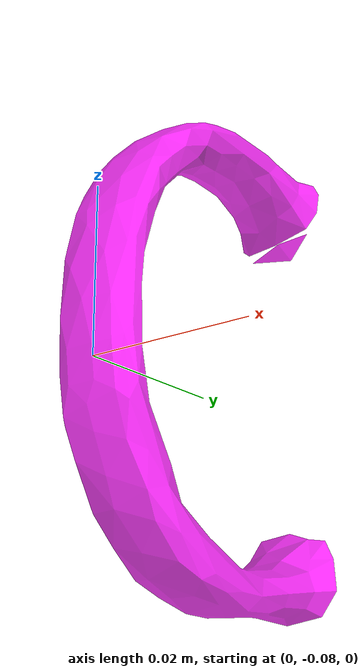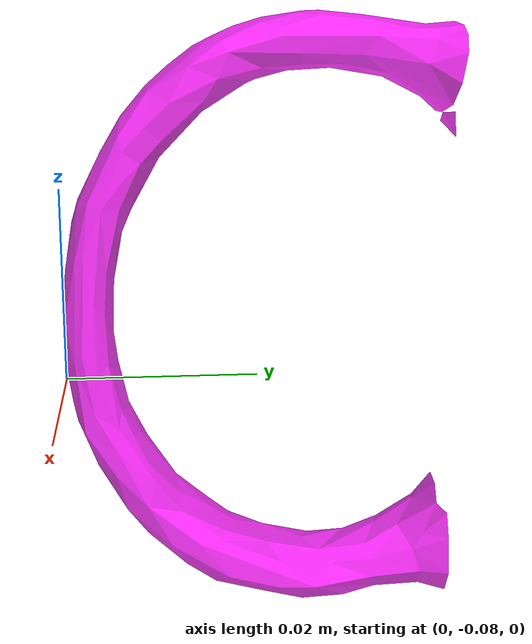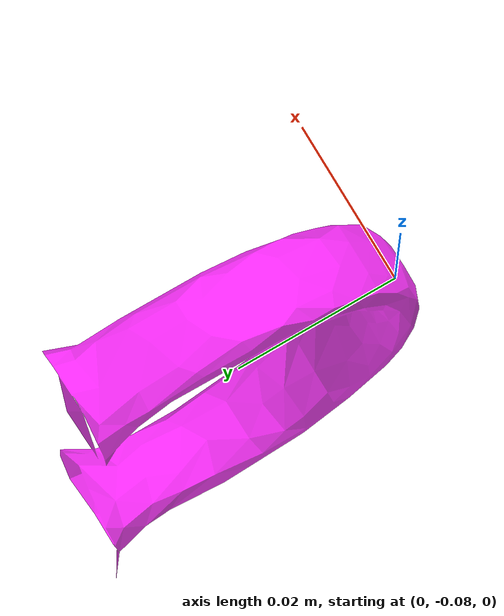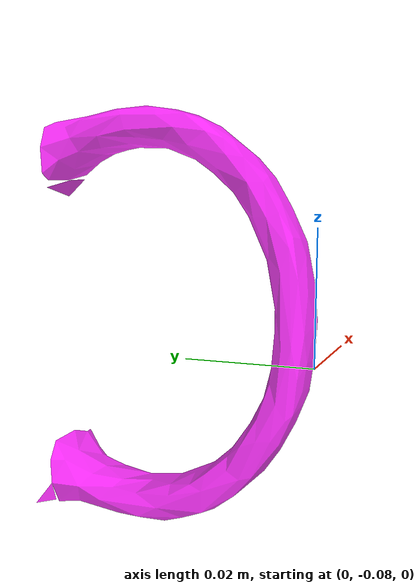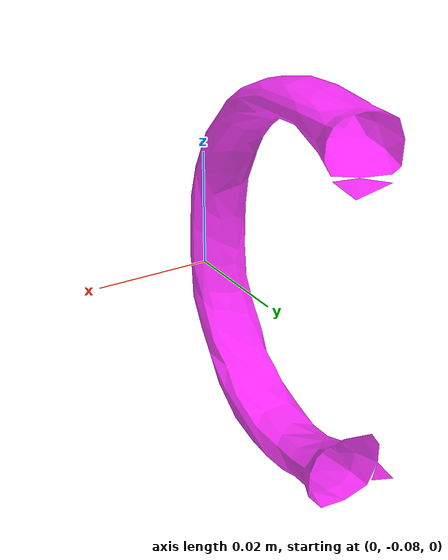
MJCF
<mujoco model="bottom_watertight_tiny">
  <default>
    <default group="2" type="mesh" contype="0" conaffinity="0">
      <geom group="2" type="mesh" contype="0" conaffinity="0"/>
    </default>
    <default group="3" type="mesh">
      <geom group="3" type="mesh"/>
    </default>
  </default>
  <asset>
    <mesh file="bottom_watertight_tiny.obj"/>
    <mesh file="bottom_watertight_tiny_collision_0.obj"/>
    <mesh file="bottom_watertight_tiny_collision_1.obj"/>
    <mesh file="bottom_watertight_tiny_collision_2.obj"/>
    <mesh file="bottom_watertight_tiny_collision_3.obj"/>
    <mesh file="bottom_watertight_tiny_collision_4.obj"/>
    <mesh file="bottom_watertight_tiny_collision_5.obj"/>
    <mesh file="bottom_watertight_tiny_collision_6.obj"/>
    <mesh file="bottom_watertight_tiny_collision_7.obj"/>
    <mesh file="bottom_watertight_tiny_collision_8.obj"/>
    <mesh file="bottom_watertight_tiny_collision_9.obj"/>
    <mesh file="bottom_watertight_tiny_collision_10.obj"/>
    <mesh file="bottom_watertight_tiny_collision_11.obj"/>
    <mesh file="bottom_watertight_tiny_collision_12.obj"/>
    <mesh file="bottom_watertight_tiny_collision_13.obj"/>
    <mesh file="bottom_watertight_tiny_collision_14.obj"/>
    <mesh file="bottom_watertight_tiny_collision_15.obj"/>
    <mesh file="bottom_watertight_tiny_collision_16.obj"/>
    <mesh file="bottom_watertight_tiny_collision_17.obj"/>
    <mesh file="bottom_watertight_tiny_collision_18.obj"/>
    <mesh file="bottom_watertight_tiny_collision_19.obj"/>
    <mesh file="bottom_watertight_tiny_collision_20.obj"/>
    <mesh file="bottom_watertight_tiny_collision_21.obj"/>
    <mesh file="bottom_watertight_tiny_collision_22.obj"/>
    <mesh file="bottom_watertight_tiny_collision_23.obj"/>
    <mesh file="bottom_watertight_tiny_collision_24.obj"/>
    <mesh file="bottom_watertight_tiny_collision_25.obj"/>
    <mesh file="bottom_watertight_tiny_collision_26.obj"/>
    <mesh file="bottom_watertight_tiny_collision_27.obj"/>
    <mesh file="bottom_watertight_tiny_collision_28.obj"/>
    <mesh file="bottom_watertight_tiny_collision_29.obj"/>
    <mesh file="bottom_watertight_tiny_collision_30.obj"/>
    <mesh file="bottom_watertight_tiny_collision_31.obj"/>
    <mesh file="bottom_watertight_tiny_collision_32.obj"/>
    <mesh file="bottom_watertight_tiny_collision_33.obj"/>
    <mesh file="bottom_watertight_tiny_collision_34.obj"/>
    <mesh file="bottom_watertight_tiny_collision_35.obj"/>
    <mesh file="bottom_watertight_tiny_collision_36.obj"/>
    <mesh file="bottom_watertight_tiny_collision_37.obj"/>
    <mesh file="bottom_watertight_tiny_collision_38.obj"/>
    <mesh file="bottom_watertight_tiny_collision_39.obj"/>
    <mesh file="bottom_watertight_tiny_collision_40.obj"/>
    <mesh file="bottom_watertight_tiny_collision_41.obj"/>
    <mesh file="bottom_watertight_tiny_collision_42.obj"/>
    <mesh file="bottom_watertight_tiny_collision_43.obj"/>
    <mesh file="bottom_watertight_tiny_collision_44.obj"/>
    <mesh file="bottom_watertight_tiny_collision_45.obj"/>
    <mesh file="bottom_watertight_tiny_collision_46.obj"/>
    <mesh file="bottom_watertight_tiny_collision_47.obj"/>
    <mesh file="bottom_watertight_tiny_collision_48.obj"/>
    <mesh file="bottom_watertight_tiny_collision_49.obj"/>
    <mesh file="bottom_watertight_tiny_collision_50.obj"/>
    <mesh file="bottom_watertight_tiny_collision_51.obj"/>
    <mesh file="bottom_watertight_tiny_collision_52.obj"/>
    <mesh file="bottom_watertight_tiny_collision_53.obj"/>
    <mesh file="bottom_watertight_tiny_collision_54.obj"/>
    <mesh file="bottom_watertight_tiny_collision_55.obj"/>
    <mesh file="bottom_watertight_tiny_collision_56.obj"/>
    <mesh file="bottom_watertight_tiny_collision_57.obj"/>
    <mesh file="bottom_watertight_tiny_collision_58.obj"/>
    <mesh file="bottom_watertight_tiny_collision_59.obj"/>
    <mesh file="bottom_watertight_tiny_collision_60.obj"/>
    <mesh file="bottom_watertight_tiny_collision_61.obj"/>
    <mesh file="bottom_watertight_tiny_collision_62.obj"/>
    <mesh file="bottom_watertight_tiny_collision_63.obj"/>
    <mesh file="bottom_watertight_tiny_collision_64.obj"/>
    <mesh file="bottom_watertight_tiny_collision_65.obj"/>
    <mesh file="bottom_watertight_tiny_collision_66.obj"/>
    <mesh file="bottom_watertight_tiny_collision_67.obj"/>
    <mesh file="bottom_watertight_tiny_collision_68.obj"/>
    <mesh file="bottom_watertight_tiny_collision_69.obj"/>
    <mesh file="bottom_watertight_tiny_collision_70.obj"/>
    <mesh file="bottom_watertight_tiny_collision_71.obj"/>
    <mesh file="bottom_watertight_tiny_collision_72.obj"/>
    <mesh file="bottom_watertight_tiny_collision_73.obj"/>
    <mesh file="bottom_watertight_tiny_collision_74.obj"/>
    <mesh file="bottom_watertight_tiny_collision_75.obj"/>
    <mesh file="bottom_watertight_tiny_collision_76.obj"/>
    <mesh file="bottom_watertight_tiny_collision_77.obj"/>
    <mesh file="bottom_watertight_tiny_collision_78.obj"/>
    <mesh file="bottom_watertight_tiny_collision_79.obj"/>
    <mesh file="bottom_watertight_tiny_collision_80.obj"/>
    <mesh file="bottom_watertight_tiny_collision_81.obj"/>
    <mesh file="bottom_watertight_tiny_collision_82.obj"/>
    <mesh file="bottom_watertight_tiny_collision_83.obj"/>
    <mesh file="bottom_watertight_tiny_collision_84.obj"/>
    <mesh file="bottom_watertight_tiny_collision_85.obj"/>
    <mesh file="bottom_watertight_tiny_collision_86.obj"/>
    <mesh file="bottom_watertight_tiny_collision_87.obj"/>
    <mesh file="bottom_watertight_tiny_collision_88.obj"/>
    <mesh file="bottom_watertight_tiny_collision_89.obj"/>
    <mesh file="bottom_watertight_tiny_collision_90.obj"/>
    <mesh file="bottom_watertight_tiny_collision_91.obj"/>
    <mesh file="bottom_watertight_tiny_collision_92.obj"/>
    <mesh file="bottom_watertight_tiny_collision_93.obj"/>
    <mesh file="bottom_watertight_tiny_collision_94.obj"/>
    <mesh file="bottom_watertight_tiny_collision_95.obj"/>
    <mesh file="bottom_watertight_tiny_collision_96.obj"/>
    <mesh file="bottom_watertight_tiny_collision_97.obj"/>
    <mesh file="bottom_watertight_tiny_collision_98.obj"/>
    <mesh file="bottom_watertight_tiny_collision_99.obj"/>
  </asset>
  <worldbody>
    <body name="bottom_watertight_tiny">
      <freejoint/>
      <geom mesh="bottom_watertight_tiny" group="2" type="mesh" rgba="1 0 1 0.8" contype="0" conaffinity="0"/>
      <geom mesh="bottom_watertight_tiny_collision_0" rgba="0.3786981795748757 0.7370060106835793 0.4919669402731893 1" group="3" type="mesh"/>
      <geom mesh="bottom_watertight_tiny_collision_1" rgba="0.10709536596336422 0.5605533575480788 0.09157359173258395 1" group="3" type="mesh"/>
      <geom mesh="bottom_watertight_tiny_collision_2" rgba="0.6388855168211772 0.8800686669144392 0.5675295302178822 1" group="3" type="mesh"/>
      <geom mesh="bottom_watertight_tiny_collision_3" rgba="0.12228949853890059 0.046934438345457186 0.13272997940803044 1" group="3" type="mesh"/>
      <geom mesh="bottom_watertight_tiny_collision_4" rgba="0.17859933788199467 0.42432647570925164 0.7907115445421177 1" group="3" type="mesh"/>
      <geom mesh="bottom_watertight_tiny_collision_5" rgba="0.9660284497067798 0.010753524014857851 0.6136223218275945 1" group="3" type="mesh"/>
      <geom mesh="bottom_watertight_tiny_collision_6" rgba="0.7718736908581824 0.6039839429650272 0.9400681856715735 1" group="3" type="mesh"/>
      <geom mesh="bottom_watertight_tiny_collision_7" rgba="0.8844265113397545 0.9310324611034508 0.08951071531595445 1" group="3" type="mesh"/>
      <geom mesh="bottom_watertight_tiny_collision_8" rgba="0.07786005638546412 0.08703555264616547 0.5295179023505122 1" group="3" type="mesh"/>
      <geom mesh="bottom_watertight_tiny_collision_9" rgba="0.25290967543013865 0.3099826914456696 0.9935016662909865 1" group="3" type="mesh"/>
      <geom mesh="bottom_watertight_tiny_collision_10" rgba="0.3017261271476237 0.6068150487499143 0.7415696845696936 1" group="3" type="mesh"/>
      <geom mesh="bottom_watertight_tiny_collision_11" rgba="0.6820688209709681 0.6598549642699781 0.22603701457204628 1" group="3" type="mesh"/>
      <geom mesh="bottom_watertight_tiny_collision_12" rgba="0.8257222494684866 0.10089989156584289 0.740484551325407 1" group="3" type="mesh"/>
      <geom mesh="bottom_watertight_tiny_collision_13" rgba="0.5610088418002962 0.677284577233111 0.1636441047200865 1" group="3" type="mesh"/>
      <geom mesh="bottom_watertight_tiny_collision_14" rgba="0.7617209866274626 0.33145529933314677 0.3629503700665917 1" group="3" type="mesh"/>
      <geom mesh="bottom_watertight_tiny_collision_15" rgba="0.5563555659558371 0.42493147597626446 0.8537063036364783 1" group="3" type="mesh"/>
      <geom mesh="bottom_watertight_tiny_collision_16" rgba="0.4175180724505452 0.003425288644566371 0.39027242655681327 1" group="3" type="mesh"/>
      <geom mesh="bottom_watertight_tiny_collision_17" rgba="0.4416593112867414 0.051183988621584686 0.9345799602668197 1" group="3" type="mesh"/>
      <geom mesh="bottom_watertight_tiny_collision_18" rgba="0.5939508239747685 0.9328634553145003 0.4561355447805674 1" group="3" type="mesh"/>
      <geom mesh="bottom_watertight_tiny_collision_19" rgba="0.8953245005655954 0.6375670873115404 0.0034958047583611984 1" group="3" type="mesh"/>
      <geom mesh="bottom_watertight_tiny_collision_20" rgba="0.8596510696640697 0.537509047927685 0.2721389632290865 1" group="3" type="mesh"/>
      <geom mesh="bottom_watertight_tiny_collision_21" rgba="0.9899286404894209 0.39272119694989216 0.6774862985543341 1" group="3" type="mesh"/>
      <geom mesh="bottom_watertight_tiny_collision_22" rgba="0.3386849136761235 0.4174579985697294 0.2532324567510703 1" group="3" type="mesh"/>
      <geom mesh="bottom_watertight_tiny_collision_23" rgba="0.5536289434928345 0.803186543991644 0.0742732015770109 1" group="3" type="mesh"/>
      <geom mesh="bottom_watertight_tiny_collision_24" rgba="0.2061129437282072 0.6572396446127593 0.3493140956384332 1" group="3" type="mesh"/>
      <geom mesh="bottom_watertight_tiny_collision_25" rgba="0.7246701762201512 0.5758348244510191 0.6910054853383423 1" group="3" type="mesh"/>
      <geom mesh="bottom_watertight_tiny_collision_26" rgba="0.3576314380988084 0.6962136933972997 0.7486227778371768 1" group="3" type="mesh"/>
      <geom mesh="bottom_watertight_tiny_collision_27" rgba="0.5872152054189967 0.6627103497996545 0.6356112235311038 1" group="3" type="mesh"/>
      <geom mesh="bottom_watertight_tiny_collision_28" rgba="0.24681347627825578 0.3329901733482502 0.8751669759755365 1" group="3" type="mesh"/>
      <geom mesh="bottom_watertight_tiny_collision_29" rgba="0.6397679688587372 0.13411786097105804 0.35641149494712254 1" group="3" type="mesh"/>
      <geom mesh="bottom_watertight_tiny_collision_30" rgba="0.24292089756867818 0.7453831962828905 0.20293107686767764 1" group="3" type="mesh"/>
      <geom mesh="bottom_watertight_tiny_collision_31" rgba="0.11536432019196785 0.8883301500786771 0.05488617058955747 1" group="3" type="mesh"/>
      <geom mesh="bottom_watertight_tiny_collision_32" rgba="0.02362906882366922 0.6005885724869433 0.9147474885070354 1" group="3" type="mesh"/>
      <geom mesh="bottom_watertight_tiny_collision_33" rgba="0.582683374575383 0.07471102933750906 0.4820085423391829 1" group="3" type="mesh"/>
      <geom mesh="bottom_watertight_tiny_collision_34" rgba="0.7109210303172745 0.33605489297285684 0.8333968183189175 1" group="3" type="mesh"/>
      <geom mesh="bottom_watertight_tiny_collision_35" rgba="0.8255797366951323 0.26794184614675065 0.7654855200458843 1" group="3" type="mesh"/>
      <geom mesh="bottom_watertight_tiny_collision_36" rgba="0.685045744028465 0.7737239002275579 0.40783582018208775 1" group="3" type="mesh"/>
      <geom mesh="bottom_watertight_tiny_collision_37" rgba="0.5133858740816962 0.3336885937689922 0.03418695584649445 1" group="3" type="mesh"/>
      <geom mesh="bottom_watertight_tiny_collision_38" rgba="0.7755359294819977 0.9483915318427595 0.2908148718376977 1" group="3" type="mesh"/>
      <geom mesh="bottom_watertight_tiny_collision_39" rgba="0.3395599484330374 0.1702068114844043 0.1638015400105386 1" group="3" type="mesh"/>
      <geom mesh="bottom_watertight_tiny_collision_40" rgba="0.9977305108982011 0.7488690991716008 0.6069353529617056 1" group="3" type="mesh"/>
      <geom mesh="bottom_watertight_tiny_collision_41" rgba="0.154219914333937 0.16887870056367627 0.810594298390762 1" group="3" type="mesh"/>
      <geom mesh="bottom_watertight_tiny_collision_42" rgba="0.2658766634325014 0.07928362073526973 0.9827037267488571 1" group="3" type="mesh"/>
      <geom mesh="bottom_watertight_tiny_collision_43" rgba="0.8764402388007903 0.2994305484690215 0.23887662581121416 1" group="3" type="mesh"/>
      <geom mesh="bottom_watertight_tiny_collision_44" rgba="0.2857938891810856 0.05599464251915387 0.27148305135327666 1" group="3" type="mesh"/>
      <geom mesh="bottom_watertight_tiny_collision_45" rgba="0.7900434160620687 0.5363452935847327 0.8889565252027019 1" group="3" type="mesh"/>
      <geom mesh="bottom_watertight_tiny_collision_46" rgba="0.5840015390050413 0.16963892626609656 0.9085067158580343 1" group="3" type="mesh"/>
      <geom mesh="bottom_watertight_tiny_collision_47" rgba="0.14936896335336491 0.335922998570537 0.035610204706514326 1" group="3" type="mesh"/>
      <geom mesh="bottom_watertight_tiny_collision_48" rgba="0.2332904325968499 0.07862063094591565 0.6796863658831666 1" group="3" type="mesh"/>
      <geom mesh="bottom_watertight_tiny_collision_49" rgba="0.8199477770017617 0.11274159438776143 0.9832484811663381 1" group="3" type="mesh"/>
      <geom mesh="bottom_watertight_tiny_collision_50" rgba="0.3057756457487194 0.6528565540114503 0.656069495292672 1" group="3" type="mesh"/>
      <geom mesh="bottom_watertight_tiny_collision_51" rgba="0.6027136110070035 0.9437420406718104 0.25006283968420917 1" group="3" type="mesh"/>
      <geom mesh="bottom_watertight_tiny_collision_52" rgba="0.0032810068795520175 0.8438280061936551 0.39590217520115323 1" group="3" type="mesh"/>
      <geom mesh="bottom_watertight_tiny_collision_53" rgba="0.017861880345473424 0.6028431305907423 0.6939903627137175 1" group="3" type="mesh"/>
      <geom mesh="bottom_watertight_tiny_collision_54" rgba="0.9630604580696054 0.22017461338511501 0.11592182568828435 1" group="3" type="mesh"/>
      <geom mesh="bottom_watertight_tiny_collision_55" rgba="0.5459996089059131 0.6987494033830424 0.3216977877972136 1" group="3" type="mesh"/>
      <geom mesh="bottom_watertight_tiny_collision_56" rgba="0.09471736140572184 0.4022340572545734 0.8266067225094548 1" group="3" type="mesh"/>
      <geom mesh="bottom_watertight_tiny_collision_57" rgba="0.8864363484911807 0.8542573831554735 0.6417796631870728 1" group="3" type="mesh"/>
      <geom mesh="bottom_watertight_tiny_collision_58" rgba="0.5215886207202318 0.5703833184083338 0.38129252424656646 1" group="3" type="mesh"/>
      <geom mesh="bottom_watertight_tiny_collision_59" rgba="0.4391627409903469 0.012909693874557648 0.18241987234840373 1" group="3" type="mesh"/>
      <geom mesh="bottom_watertight_tiny_collision_60" rgba="0.6892047326052966 0.32792512653564154 0.44813268736405376 1" group="3" type="mesh"/>
      <geom mesh="bottom_watertight_tiny_collision_61" rgba="0.8273484549519198 0.21443852471378322 0.5254361658864364 1" group="3" type="mesh"/>
      <geom mesh="bottom_watertight_tiny_collision_62" rgba="0.2401106302627376 0.007561336705790289 0.5629739201997812 1" group="3" type="mesh"/>
      <geom mesh="bottom_watertight_tiny_collision_63" rgba="0.10589498765695005 0.363348633774326 0.04938963129832474 1" group="3" type="mesh"/>
      <geom mesh="bottom_watertight_tiny_collision_64" rgba="0.22135762174327078 0.8947850372095286 0.8484779871468074 1" group="3" type="mesh"/>
      <geom mesh="bottom_watertight_tiny_collision_65" rgba="0.42254767983331465 0.8233622609423195 0.6319733731879472 1" group="3" type="mesh"/>
      <geom mesh="bottom_watertight_tiny_collision_66" rgba="0.0709913237429336 0.3562012903139504 0.4383779684648419 1" group="3" type="mesh"/>
      <geom mesh="bottom_watertight_tiny_collision_67" rgba="0.700778228219055 0.5654867227935529 0.49676923664829886 1" group="3" type="mesh"/>
      <geom mesh="bottom_watertight_tiny_collision_68" rgba="0.6205645392108853 0.8742946268857018 0.21963024951986376 1" group="3" type="mesh"/>
      <geom mesh="bottom_watertight_tiny_collision_69" rgba="0.9104231995292903 0.2165063443969737 0.8890106273747677 1" group="3" type="mesh"/>
      <geom mesh="bottom_watertight_tiny_collision_70" rgba="0.7534020488843187 0.7817144542072969 0.5550864534933132 1" group="3" type="mesh"/>
      <geom mesh="bottom_watertight_tiny_collision_71" rgba="0.5276970519613564 0.05163033950863438 0.7938983003727816 1" group="3" type="mesh"/>
      <geom mesh="bottom_watertight_tiny_collision_72" rgba="0.9331514095727549 0.5247071829063072 0.5193816902162267 1" group="3" type="mesh"/>
      <geom mesh="bottom_watertight_tiny_collision_73" rgba="0.21458888765753792 0.15291366230937598 0.4539701084732426 1" group="3" type="mesh"/>
      <geom mesh="bottom_watertight_tiny_collision_74" rgba="0.2506555032335044 0.8246597816415998 0.6022592452404694 1" group="3" type="mesh"/>
      <geom mesh="bottom_watertight_tiny_collision_75" rgba="0.5678325642022392 0.5362599130968061 0.024502196457502512 1" group="3" type="mesh"/>
      <geom mesh="bottom_watertight_tiny_collision_76" rgba="0.032564288192875046 0.8481559240464578 0.8264978476910191 1" group="3" type="mesh"/>
      <geom mesh="bottom_watertight_tiny_collision_77" rgba="0.8505434761373672 0.26512100881069967 0.6388581269393692 1" group="3" type="mesh"/>
      <geom mesh="bottom_watertight_tiny_collision_78" rgba="0.1308612947835478 0.04157275877161615 0.695121579575556 1" group="3" type="mesh"/>
      <geom mesh="bottom_watertight_tiny_collision_79" rgba="0.11163581561328118 0.7930205554784949 0.41463192563104045 1" group="3" type="mesh"/>
      <geom mesh="bottom_watertight_tiny_collision_80" rgba="0.12059929041587658 0.6862683757380683 0.8589692115572471 1" group="3" type="mesh"/>
      <geom mesh="bottom_watertight_tiny_collision_81" rgba="0.4792603489542635 0.9943524264652718 0.7580971894386084 1" group="3" type="mesh"/>
      <geom mesh="bottom_watertight_tiny_collision_82" rgba="0.7684664607780233 0.7826880551643438 0.25697914249407083 1" group="3" type="mesh"/>
      <geom mesh="bottom_watertight_tiny_collision_83" rgba="0.8523701701043679 0.43029186939347064 0.3113366936308207 1" group="3" type="mesh"/>
      <geom mesh="bottom_watertight_tiny_collision_84" rgba="0.9280876975144754 0.6068923268953423 0.19668005245676057 1" group="3" type="mesh"/>
      <geom mesh="bottom_watertight_tiny_collision_85" rgba="0.3358422333709189 0.765800492375064 0.0005231980893414256 1" group="3" type="mesh"/>
      <geom mesh="bottom_watertight_tiny_collision_86" rgba="0.4754795408585605 0.4681584888430763 0.2674951434416166 1" group="3" type="mesh"/>
      <geom mesh="bottom_watertight_tiny_collision_87" rgba="0.23735328702882885 0.9543183390315418 0.5917572103157012 1" group="3" type="mesh"/>
      <geom mesh="bottom_watertight_tiny_collision_88" rgba="0.4240927330665958 0.017310698788691403 0.8462923114073952 1" group="3" type="mesh"/>
      <geom mesh="bottom_watertight_tiny_collision_89" rgba="0.07599072936154905 0.07907573711927363 0.38349789189998507 1" group="3" type="mesh"/>
      <geom mesh="bottom_watertight_tiny_collision_90" rgba="0.3667490919049773 0.6619704421526365 0.6965556019868211 1" group="3" type="mesh"/>
      <geom mesh="bottom_watertight_tiny_collision_91" rgba="0.6004198734681447 0.5389623040713926 0.4374862270880081 1" group="3" type="mesh"/>
      <geom mesh="bottom_watertight_tiny_collision_92" rgba="0.42364726535520913 0.7108319194095546 0.8526191111835391 1" group="3" type="mesh"/>
      <geom mesh="bottom_watertight_tiny_collision_93" rgba="0.9928214232417015 0.906720258216718 0.555562668571404 1" group="3" type="mesh"/>
      <geom mesh="bottom_watertight_tiny_collision_94" rgba="0.8046522010639766 0.9480480205531033 0.5671876536633593 1" group="3" type="mesh"/>
      <geom mesh="bottom_watertight_tiny_collision_95" rgba="0.0991920650621364 0.4358498885448382 0.05553697161887139 1" group="3" type="mesh"/>
      <geom mesh="bottom_watertight_tiny_collision_96" rgba="0.1658956515486396 0.9939352128850308 0.27166302990615165 1" group="3" type="mesh"/>
      <geom mesh="bottom_watertight_tiny_collision_97" rgba="0.7926978450168319 0.14907268164214849 0.7778898375128867 1" group="3" type="mesh"/>
      <geom mesh="bottom_watertight_tiny_collision_98" rgba="0.8470418449736996 0.11259851012412436 0.26775752715387624 1" group="3" type="mesh"/>
      <geom mesh="bottom_watertight_tiny_collision_99" rgba="0.9864060518298329 0.2056569668396394 0.9955790108938792 1" group="3" type="mesh"/>
    </body>
  </worldbody>
</mujoco>
